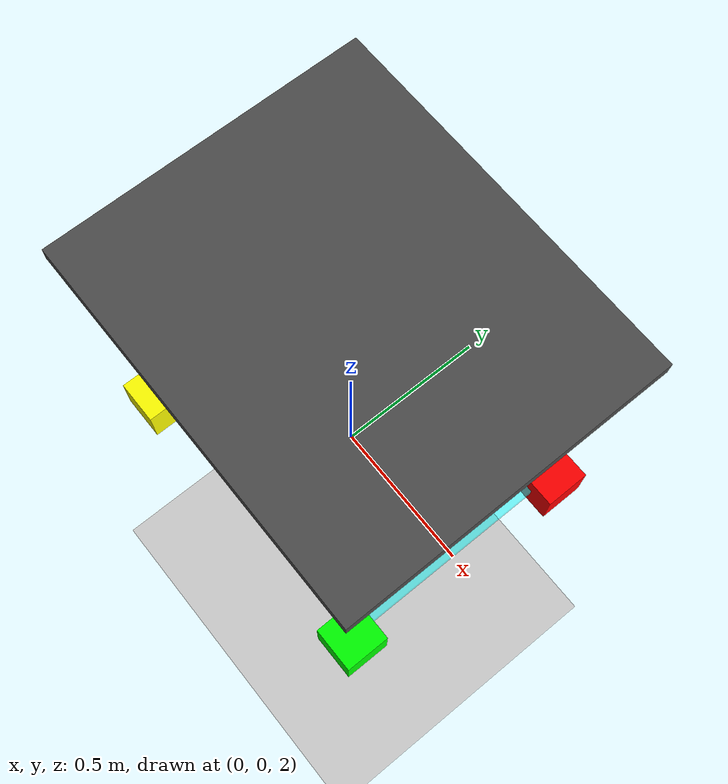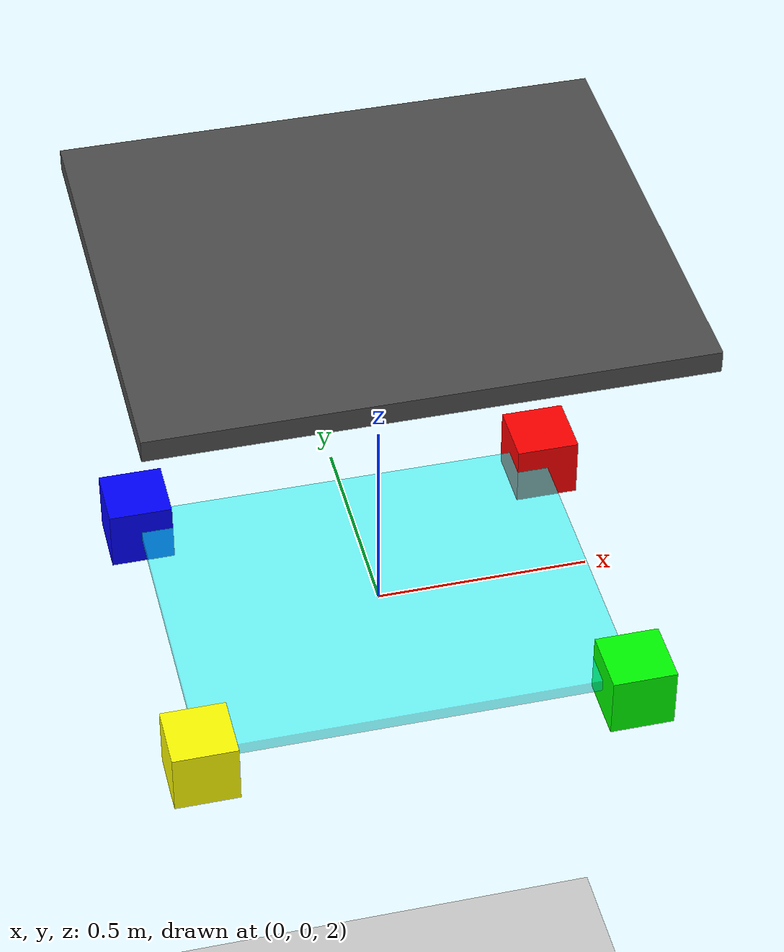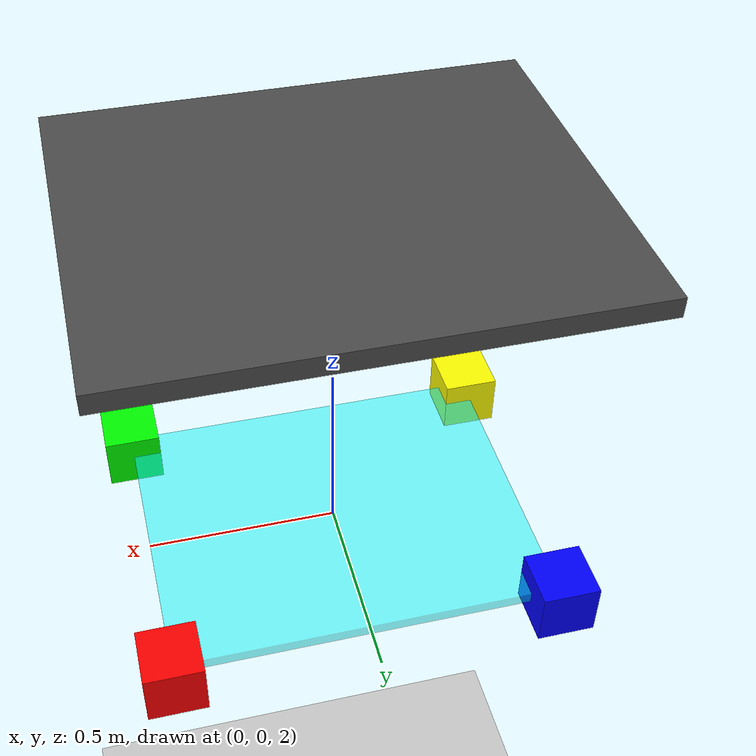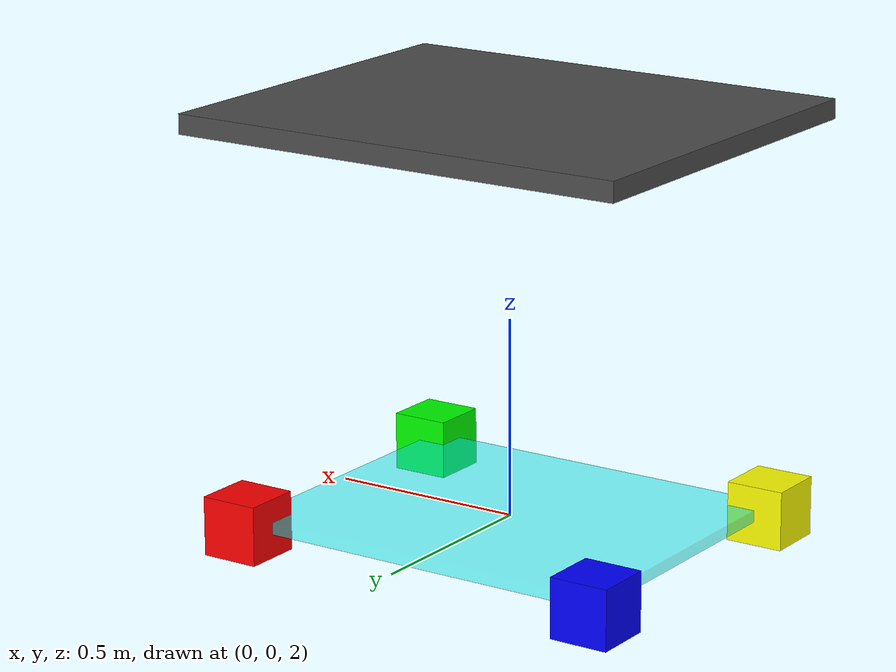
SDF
<?xml version="1.0" ?>
<sdf version="1.9">
  <world name="platform_world">

    <!-- ==================== PHYSICS ==================== -->
    <physics name="1ms" type="ode">
      <max_step_size>0.001</max_step_size>
      <real_time_factor>1.0</real_time_factor>
      <real_time_update_rate>1000</real_time_update_rate>
    </physics>

    <!-- ==================== WORLD PLUGINS ==================== -->
    <plugin filename="gz-sim-physics-system"
            name="gz::sim::systems::Physics">
    </plugin>
    <plugin filename="gz-sim-scene-broadcaster-system"
            name="gz::sim::systems::SceneBroadcaster">
    </plugin>
    <plugin filename="gz-sim-user-commands-system"
            name="gz::sim::systems::UserCommands">
    </plugin>

    <!-- ==================== LIGHTING ==================== -->
    <light type="directional" name="sun">
      <cast_shadows>true</cast_shadows>
      <pose>0 0 10 0 0 0</pose>
      <diffuse>1 1 1 1</diffuse>
      <specular>0.5 0.5 0.5 1</specular>
      <direction>-0.5 0.1 -0.9</direction>
    </light>

    <!-- ==================== GROUND PLANE ==================== -->
    <model name="ground_plane">
      <static>true</static>
      <link name="ground_link">
        <collision name="collision">
          <geometry>
            <plane>
              <normal>0 0 1</normal>
              <size>100 100</size>
            </plane>
          </geometry>
        </collision>
        <visual name="visual">
          <geometry>
            <plane>
              <normal>0 0 1</normal>
              <size>100 100</size>
            </plane>
          </geometry>
          <material>
            <ambient>0.8 0.8 0.8 1</ambient>
            <diffuse>0.8 0.8 0.8 1</diffuse>
          </material>
        </visual>
      </link>
    </model>

    <!--              VIBRATION PLATFORM WITH 4 ACTUATORS             -->
    <model name="vibration_platform">

      <!-- ======= BASE FRAME (Ceiling/Mount - Fixed to World) ======= -->
      <link name="base_link">
        <pose>0 0 3.0 0 0 0</pose>
        <visual name="base_visual">
          <geometry>
            <box>
              <size>1.2 1.0 0.05</size>
            </box>
          </geometry>
          <material>
            <ambient>0.3 0.3 0.3 1</ambient>
            <diffuse>0.3 0.3 0.3 1</diffuse>
          </material>
        </visual>
        <collision name="base_collision">
          <geometry>
            <box>
              <size>1.2 1.0 0.05</size>
            </box>
          </geometry>
        </collision>
        <inertial>
          <mass>1000.0</mass>
          <inertia>
            <ixx>100.0</ixx>
            <iyy>100.0</iyy>
            <izz>100.0</izz>
          </inertia>
        </inertial>
      </link>

      <joint name="world_to_base" type="fixed">
        <parent>world</parent>
        <child>base_link</child>
      </joint>

      <!-- ======= ACTUATOR FL (Front-Left) ======= -->
      <link name="actuator_fl">
        <pose>0.5 0.4 2.0 0 0 0</pose>
        <visual name="visual_fl">
          <geometry>
            <box>
              <size>0.15 0.15 0.15</size>
            </box>
          </geometry>
          <material>
            <ambient>1.0 0.0 0.0 1</ambient>
            <diffuse>1.0 0.0 0.0 1</diffuse>
          </material>
        </visual>
        <collision name="collision_fl">
          <geometry>
            <box>
              <size>0.15 0.15 0.15</size>
            </box>
          </geometry>
        </collision>
        <inertial>
          <mass>3.0</mass>
          <inertia>
            <ixx>0.01125</ixx>
            <iyy>0.01125</iyy>
            <izz>0.01125</izz>
          </inertia>
        </inertial>
      </link>

      <joint name="spring_fl" type="prismatic">
        <parent>base_link</parent>
        <child>actuator_fl</child>
        <axis>
          <xyz>0 0 1</xyz>
          <limit>
            <lower>-2.0</lower>
            <upper>1.0</upper>
            <effort>1000</effort>
            <velocity>10</velocity>
          </limit>
          <dynamics>
            <spring_stiffness>200.0</spring_stiffness>
            <spring_reference>-1.0</spring_reference>
            <damping>10.0</damping>
            <friction>0.0</friction>
          </dynamics>
        </axis>
      </joint>

      <!-- ======= ACTUATOR FR (Front-Right) ======= -->
      <link name="actuator_fr">
        <pose>0.5 -0.4 2.0 0 0 0</pose>
        <visual name="visual_fr">
          <geometry>
            <box>
              <size>0.15 0.15 0.15</size>
            </box>
          </geometry>
          <material>
            <ambient>0.0 1.0 0.0 1</ambient>
            <diffuse>0.0 1.0 0.0 1</diffuse>
          </material>
        </visual>
        <collision name="collision_fr">
          <geometry>
            <box>
              <size>0.15 0.15 0.15</size>
            </box>
          </geometry>
        </collision>
        <inertial>
          <mass>3.0</mass>
          <inertia>
            <ixx>0.01125</ixx>
            <iyy>0.01125</iyy>
            <izz>0.01125</izz>
          </inertia>
        </inertial>
      </link>

      <joint name="spring_fr" type="prismatic">
        <parent>base_link</parent>
        <child>actuator_fr</child>
        <axis>
          <xyz>0 0 1</xyz>
          <limit>
            <lower>-2.0</lower>
            <upper>1.0</upper>
            <effort>1000</effort>
            <velocity>10</velocity>
          </limit>
          <dynamics>
            <spring_stiffness>200.0</spring_stiffness>
            <spring_reference>-1.0</spring_reference>
            <damping>10.0</damping>
            <friction>0.0</friction>
          </dynamics>
        </axis>
      </joint>

      <!-- ======= ACTUATOR RL (Rear-Left) ======= -->
      <link name="actuator_rl">
        <pose>-0.5 0.4 2.0 0 0 0</pose>
        <visual name="visual_rl">
          <geometry>
            <box>
              <size>0.15 0.15 0.15</size>
            </box>
          </geometry>
          <material>
            <ambient>0.0 0.0 1.0 1</ambient>
            <diffuse>0.0 0.0 1.0 1</diffuse>
          </material>
        </visual>
        <collision name="collision_rl">
          <geometry>
            <box>
              <size>0.15 0.15 0.15</size>
            </box>
          </geometry>
        </collision>
        <inertial>
          <mass>3.0</mass>
          <inertia>
            <ixx>0.01125</ixx>
            <iyy>0.01125</iyy>
            <izz>0.01125</izz>
          </inertia>
        </inertial>
      </link>

      <joint name="spring_rl" type="prismatic">
        <parent>base_link</parent>
        <child>actuator_rl</child>
        <axis>
          <xyz>0 0 1</xyz>
          <limit>
            <lower>-2.0</lower>
            <upper>1.0</upper>
            <effort>1000</effort>
            <velocity>10</velocity>
          </limit>
          <dynamics>
            <spring_stiffness>200.0</spring_stiffness>
            <spring_reference>-1.0</spring_reference>
            <damping>10.0</damping>
            <friction>0.0</friction>
          </dynamics>
        </axis>
      </joint>

      <!-- ======= ACTUATOR RR (Rear-Right) ======= -->
      <link name="actuator_rr">
        <pose>-0.5 -0.4 2.0 0 0 0</pose>
        <visual name="visual_rr">
          <geometry>
            <box>
              <size>0.15 0.15 0.15</size>
            </box>
          </geometry>
          <material>
            <ambient>1.0 1.0 0.0 1</ambient>
            <diffuse>1.0 1.0 0.0 1</diffuse>
          </material>
        </visual>
        <collision name="collision_rr">
          <geometry>
            <box>
              <size>0.15 0.15 0.15</size>
            </box>
          </geometry>
        </collision>
        <inertial>
          <mass>3.0</mass>
          <inertia>
            <ixx>0.01125</ixx>
            <iyy>0.01125</iyy>
            <izz>0.01125</izz>
          </inertia>
        </inertial>
      </link>

      <joint name="spring_rr" type="prismatic">
        <parent>base_link</parent>
        <child>actuator_rr</child>
        <axis>
          <xyz>0 0 1</xyz>
          <limit>
            <lower>-2.0</lower>
            <upper>1.0</upper>
            <effort>1000</effort>
            <velocity>10</velocity>
          </limit>
          <dynamics>
            <spring_stiffness>200.0</spring_stiffness>
            <spring_reference>-1.0</spring_reference>
            <damping>10.0</damping>
            <friction>0.0</friction>
          </dynamics>
        </axis>
      </joint>

      <!-- ======= VISUAL PLATFORM (Connecting the 4 actuators visually) ======= -->
      <link name="platform_visual">
        <pose>0 0 2.0 0 0 0</pose>
        <visual name="platform_vis">
          <geometry>
            <box>
              <size>1.0 0.8 0.03</size>
            </box>
          </geometry>
          <material>
            <ambient>0.0 1.0 1.0 0.5</ambient>
            <diffuse>0.0 1.0 1.0 0.5</diffuse>
          </material>
        </visual>
        <inertial>
          <mass>0.01</mass>
          <inertia>
            <ixx>0.001</ixx>
            <iyy>0.001</iyy>
            <izz>0.001</izz>
          </inertia>
        </inertial>
      </link>

      <joint name="platform_attach" type="fixed">
        <parent>actuator_fl</parent>
        <child>platform_visual</child>
      </joint>

      <!-- ======= PLUGINS ======= -->

      <!-- Joint State Publisher (all 4 joints) -->
      <plugin filename="gz-sim-joint-state-publisher-system"
              name="gz::sim::systems::JointStatePublisher">
        <joint_name>spring_fl</joint_name>
        <joint_name>spring_fr</joint_name>
        <joint_name>spring_rl</joint_name>
        <joint_name>spring_rr</joint_name>
      </plugin>

      <!-- Apply Force: FL -->
      <plugin filename="gz-sim-apply-joint-force-system"
              name="gz::sim::systems::ApplyJointForce">
        <joint_name>spring_fl</joint_name>
      </plugin>

      <!-- Apply Force: FR -->
      <plugin filename="gz-sim-apply-joint-force-system"
              name="gz::sim::systems::ApplyJointForce">
        <joint_name>spring_fr</joint_name>
      </plugin>

      <!-- Apply Force: RL -->
      <plugin filename="gz-sim-apply-joint-force-system"
              name="gz::sim::systems::ApplyJointForce">
        <joint_name>spring_rl</joint_name>
      </plugin>

      <!-- Apply Force: RR -->
      <plugin filename="gz-sim-apply-joint-force-system"
              name="gz::sim::systems::ApplyJointForce">
        <joint_name>spring_rr</joint_name>
      </plugin>

    </model>

  </world>
</sdf>
